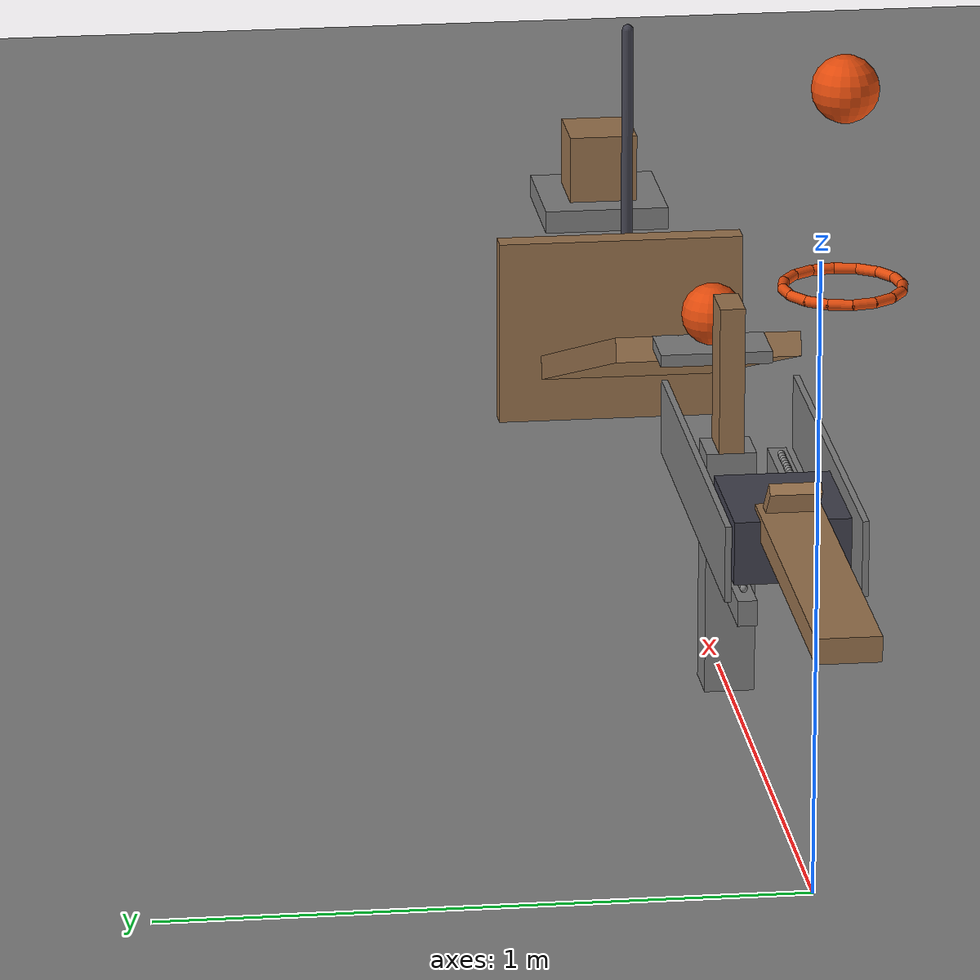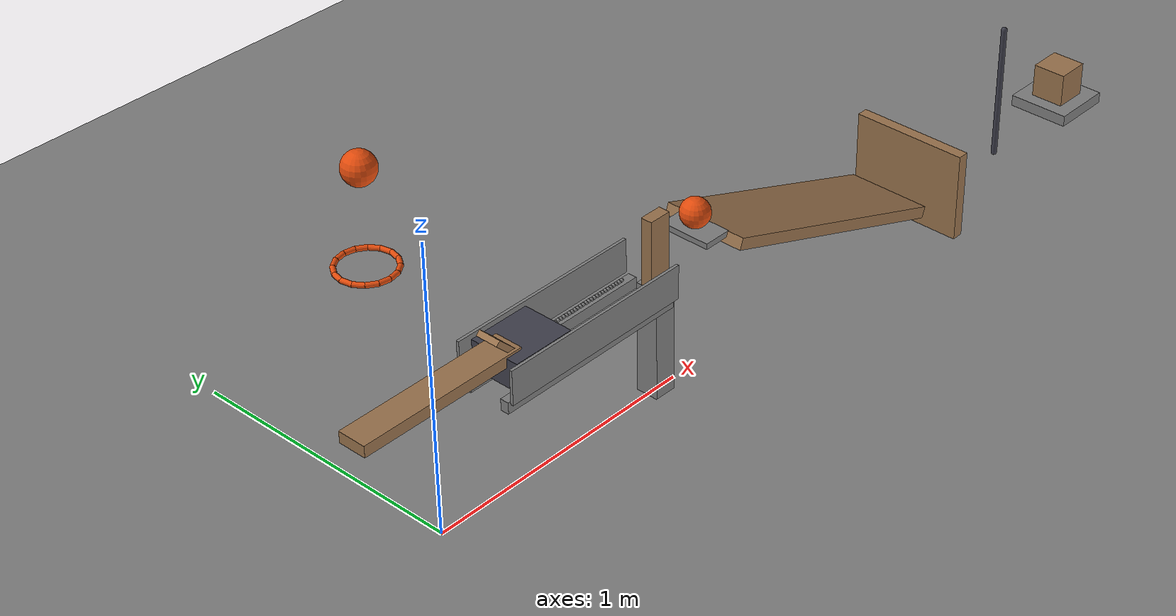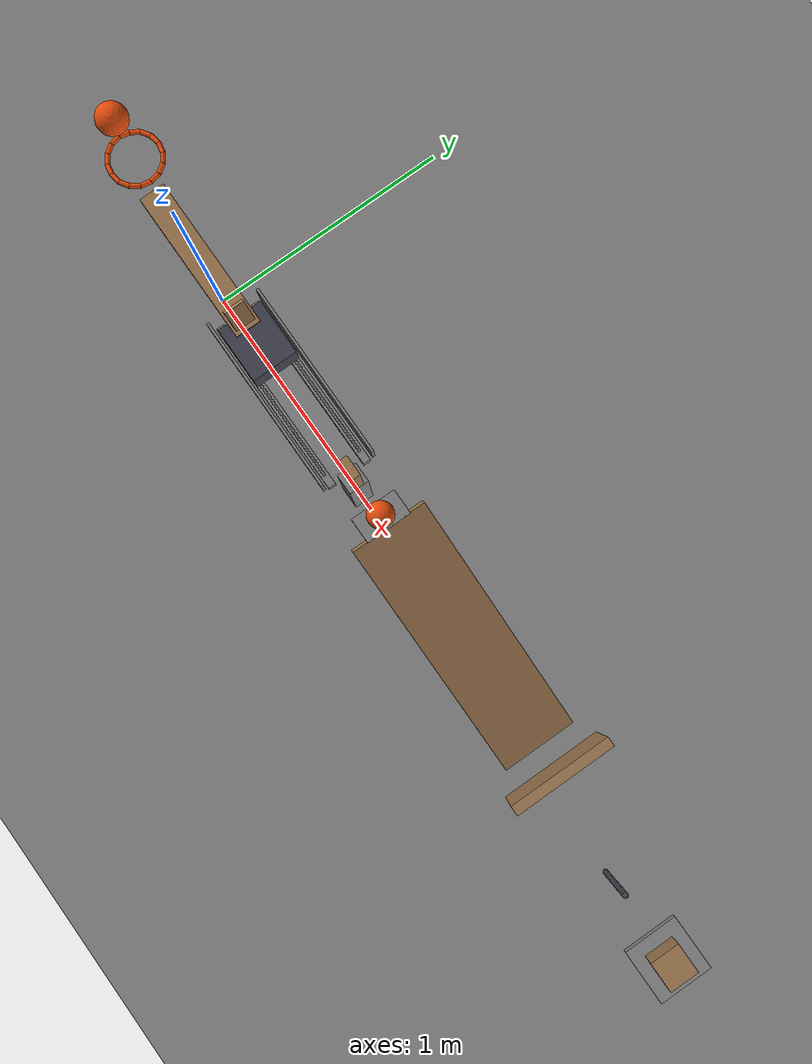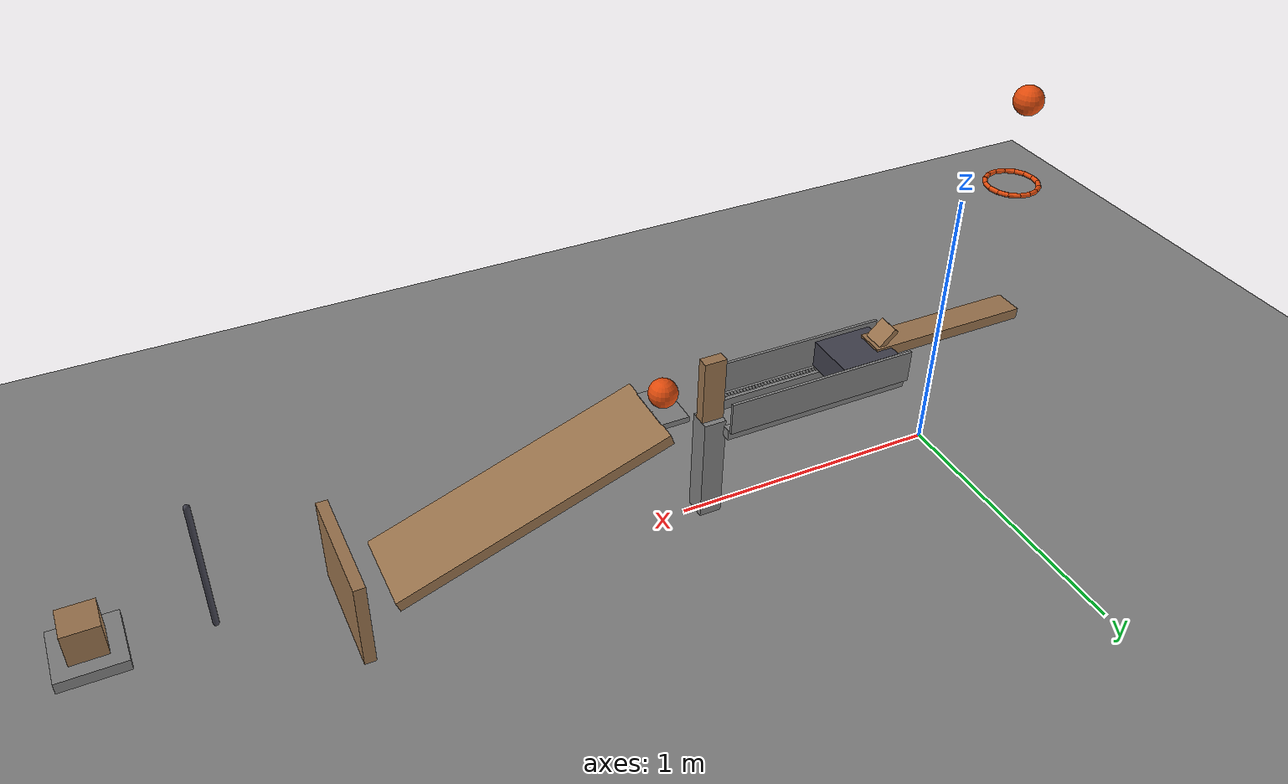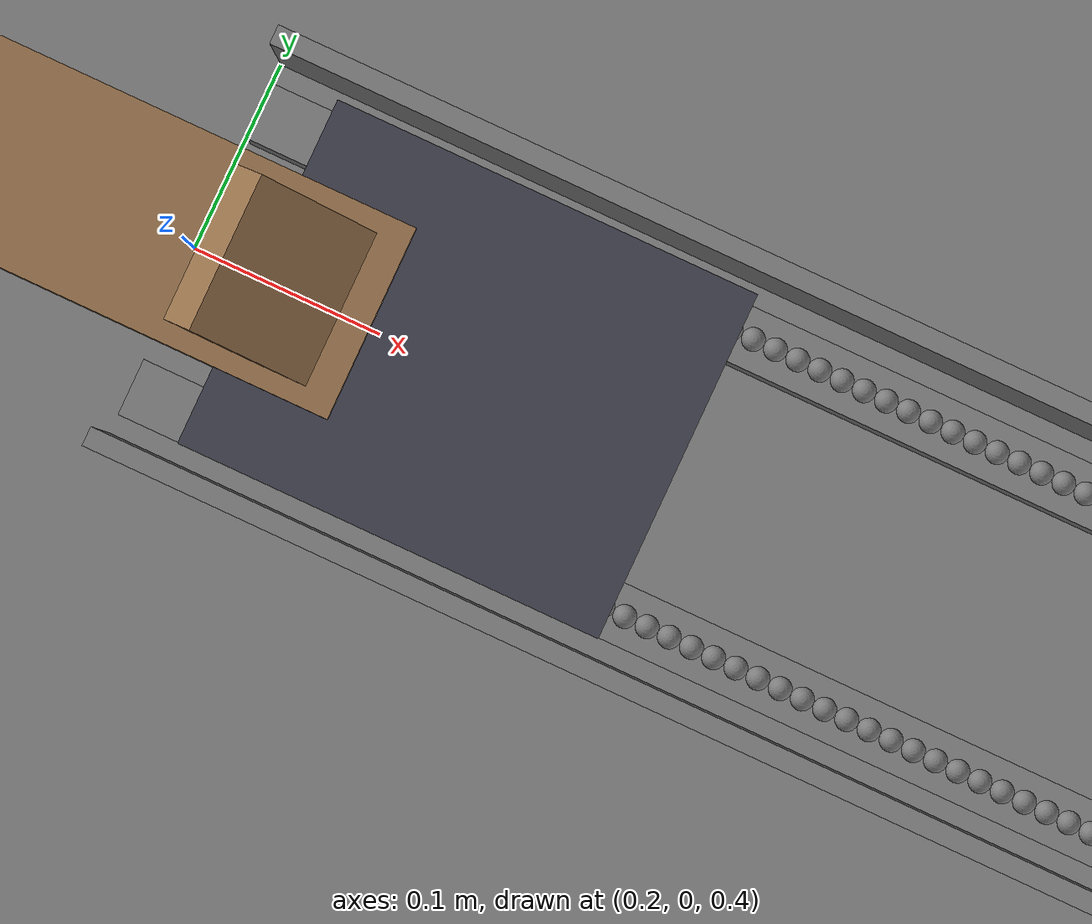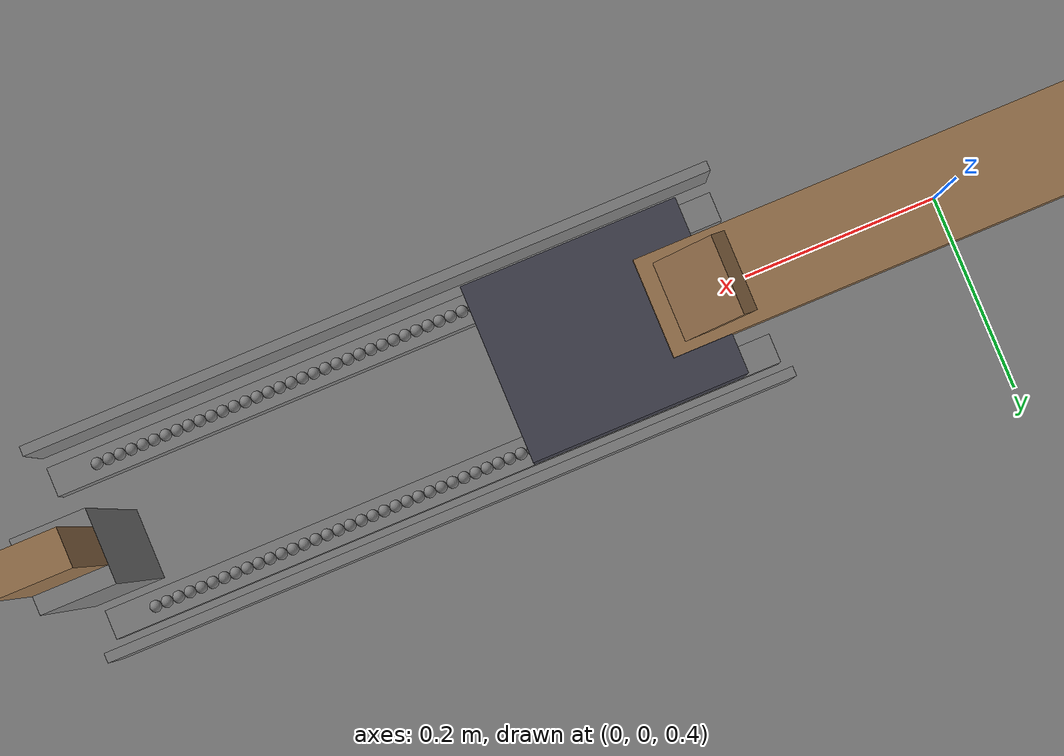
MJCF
<mujoco model="gravity_driven_contact_chain">
  <compiler angle="radian"/>
  <option timestep="0.002"/>
  <worldbody>
    <geom name="floor" type="plane" size="8 8 0.1" friction="0.72 0 0"/>
    <body name="ring1">
      <geom name="ring1_00" type="capsule" size="0.008" fromto="-0.10999 0 1.02627 -0.116689 0.0336761 1.02627" friction="0.72 0 0" solref="0.01 1" rgba="0.9 0.3 0.05 1"/>
      <geom name="ring1_01" type="capsule" size="0.008" fromto="-0.116689 0.0336761 1.02627 -0.135765 0.0622254 1.02627" friction="0.72 0 0" solref="0.01 1" rgba="0.9 0.3 0.05 1"/>
      <geom name="ring1_02" type="capsule" size="0.008" fromto="-0.135765 0.0622254 1.02627 -0.164314 0.0813014 1.02627" friction="0.72 0 0" solref="0.01 1" rgba="0.9 0.3 0.05 1"/>
      <geom name="ring1_03" type="capsule" size="0.008" fromto="-0.164314 0.0813014 1.02627 -0.19799 0.088 1.02627" friction="0.72 0 0" solref="0.01 1" rgba="0.9 0.3 0.05 1"/>
      <geom name="ring1_04" type="capsule" size="0.008" fromto="-0.19799 0.088 1.02627 -0.231666 0.0813014 1.02627" friction="0.72 0 0" solref="0.01 1" rgba="0.9 0.3 0.05 1"/>
      <geom name="ring1_05" type="capsule" size="0.008" fromto="-0.231666 0.0813014 1.02627 -0.260215 0.0622254 1.02627" friction="0.72 0 0" solref="0.01 1" rgba="0.9 0.3 0.05 1"/>
      <geom name="ring1_06" type="capsule" size="0.008" fromto="-0.260215 0.0622254 1.02627 -0.279291 0.0336761 1.02627" friction="0.72 0 0" solref="0.01 1" rgba="0.9 0.3 0.05 1"/>
      <geom name="ring1_07" type="capsule" size="0.008" fromto="-0.279291 0.0336761 1.02627 -0.28599 1.07769e-17 1.02627" friction="0.72 0 0" solref="0.01 1" rgba="0.9 0.3 0.05 1"/>
      <geom name="ring1_08" type="capsule" size="0.008" fromto="-0.28599 1.07769e-17 1.02627 -0.279291 -0.0336761 1.02627" friction="0.72 0 0" solref="0.01 1" rgba="0.9 0.3 0.05 1"/>
      <geom name="ring1_09" type="capsule" size="0.008" fromto="-0.279291 -0.0336761 1.02627 -0.260215 -0.0622254 1.02627" friction="0.72 0 0" solref="0.01 1" rgba="0.9 0.3 0.05 1"/>
      <geom name="ring1_10" type="capsule" size="0.008" fromto="-0.260215 -0.0622254 1.02627 -0.231666 -0.0813014 1.02627" friction="0.72 0 0" solref="0.01 1" rgba="0.9 0.3 0.05 1"/>
      <geom name="ring1_11" type="capsule" size="0.008" fromto="-0.231666 -0.0813014 1.02627 -0.19799 -0.088 1.02627" friction="0.72 0 0" solref="0.01 1" rgba="0.9 0.3 0.05 1"/>
      <geom name="ring1_12" type="capsule" size="0.008" fromto="-0.19799 -0.088 1.02627 -0.164314 -0.0813014 1.02627" friction="0.72 0 0" solref="0.01 1" rgba="0.9 0.3 0.05 1"/>
      <geom name="ring1_13" type="capsule" size="0.008" fromto="-0.164314 -0.0813014 1.02627 -0.135765 -0.0622254 1.02627" friction="0.72 0 0" solref="0.01 1" rgba="0.9 0.3 0.05 1"/>
      <geom name="ring1_14" type="capsule" size="0.008" fromto="-0.135765 -0.0622254 1.02627 -0.116689 -0.0336761 1.02627" friction="0.72 0 0" solref="0.01 1" rgba="0.9 0.3 0.05 1"/>
      <geom name="ring1_15" type="capsule" size="0.008" fromto="-0.116689 -0.0336761 1.02627 -0.10999 -2.15538e-17 1.02627" friction="0.72 0 0" solref="0.01 1" rgba="0.9 0.3 0.05 1"/>
    </body>
    <body name="ball1" pos="-0.19799 0 1.32627">
      <freejoint/>
      <geom name="ball1" type="sphere" pos="0 0 0" size="0.05" mass="0.2" condim="6" friction="0.72 0 0" solref="0.01 1" rgba="0.9 0.3 0.05 1"/>
    </body>
    <body name="lever1" pos="0 0 0.5">
      <joint name="lever_hinge" type="hinge" pos="0 0 0" axis="0 1 0" limited="true" range="0 0.785398" damping="0.04"/>
      <geom name="lever1" type="box" pos="0 0 0" size="0.3 0.05 0.02" mass="0.5" friction="0.72 0 0" solref="0.01 1" rgba="0.6 0.45 0.3 1"/>
      <geom name="lever striking face" type="box" pos="0.28 0 0.01" size="0.0848528 0.04 0.01" euler="0 0.785398 0" mass="0.001" friction="0.72 0 0" solref="0.01 1" rgba="0.6 0.45 0.3 1"/>
    </body>
    <body name="left bearing rail">
      <geom name="left bearing rail" type="box" pos="0.55 0.075 0.38" size="0.35 0.015 0.02" friction="0.72 0 0" solref="0.01 1"/>
    </body>
    <body name="right bearing rail">
      <geom name="right bearing rail" type="box" pos="0.55 -0.075 0.38" size="0.35 0.015 0.02" friction="0.72 0 0" solref="0.01 1"/>
    </body>
    <body name="left bearings1" pos="0.24 0.075 0.406">
      <freejoint/>
      <geom name="left bearings1" type="sphere" pos="0 0 0" size="0.006" mass="0.001" condim="6" friction="0.72 0 0" solref="0.01 1"/>
    </body>
    <body name="left bearings2" pos="0.252 0.075 0.406">
      <freejoint/>
      <geom name="left bearings2" type="sphere" pos="0 0 0" size="0.006" mass="0.001" condim="6" friction="0.72 0 0" solref="0.01 1"/>
    </body>
    <body name="left bearings3" pos="0.264 0.075 0.406">
      <freejoint/>
      <geom name="left bearings3" type="sphere" pos="0 0 0" size="0.006" mass="0.001" condim="6" friction="0.72 0 0" solref="0.01 1"/>
    </body>
    <body name="left bearings4" pos="0.276 0.075 0.406">
      <freejoint/>
      <geom name="left bearings4" type="sphere" pos="0 0 0" size="0.006" mass="0.001" condim="6" friction="0.72 0 0" solref="0.01 1"/>
    </body>
    <body name="left bearings5" pos="0.288 0.075 0.406">
      <freejoint/>
      <geom name="left bearings5" type="sphere" pos="0 0 0" size="0.006" mass="0.001" condim="6" friction="0.72 0 0" solref="0.01 1"/>
    </body>
    <body name="left bearings6" pos="0.3 0.075 0.406">
      <freejoint/>
      <geom name="left bearings6" type="sphere" pos="0 0 0" size="0.006" mass="0.001" condim="6" friction="0.72 0 0" solref="0.01 1"/>
    </body>
    <body name="left bearings7" pos="0.312 0.075 0.406">
      <freejoint/>
      <geom name="left bearings7" type="sphere" pos="0 0 0" size="0.006" mass="0.001" condim="6" friction="0.72 0 0" solref="0.01 1"/>
    </body>
    <body name="left bearings8" pos="0.324 0.075 0.406">
      <freejoint/>
      <geom name="left bearings8" type="sphere" pos="0 0 0" size="0.006" mass="0.001" condim="6" friction="0.72 0 0" solref="0.01 1"/>
    </body>
    <body name="left bearings9" pos="0.336 0.075 0.406">
      <freejoint/>
      <geom name="left bearings9" type="sphere" pos="0 0 0" size="0.006" mass="0.001" condim="6" friction="0.72 0 0" solref="0.01 1"/>
    </body>
    <body name="left bearings10" pos="0.348 0.075 0.406">
      <freejoint/>
      <geom name="left bearings10" type="sphere" pos="0 0 0" size="0.006" mass="0.001" condim="6" friction="0.72 0 0" solref="0.01 1"/>
    </body>
    <body name="left bearings11" pos="0.36 0.075 0.406">
      <freejoint/>
      <geom name="left bearings11" type="sphere" pos="0 0 0" size="0.006" mass="0.001" condim="6" friction="0.72 0 0" solref="0.01 1"/>
    </body>
    <body name="left bearings12" pos="0.372 0.075 0.406">
      <freejoint/>
      <geom name="left bearings12" type="sphere" pos="0 0 0" size="0.006" mass="0.001" condim="6" friction="0.72 0 0" solref="0.01 1"/>
    </body>
    <body name="left bearings13" pos="0.384 0.075 0.406">
      <freejoint/>
      <geom name="left bearings13" type="sphere" pos="0 0 0" size="0.006" mass="0.001" condim="6" friction="0.72 0 0" solref="0.01 1"/>
    </body>
    <body name="left bearings14" pos="0.396 0.075 0.406">
      <freejoint/>
      <geom name="left bearings14" type="sphere" pos="0 0 0" size="0.006" mass="0.001" condim="6" friction="0.72 0 0" solref="0.01 1"/>
    </body>
    <body name="left bearings15" pos="0.408 0.075 0.406">
      <freejoint/>
      <geom name="left bearings15" type="sphere" pos="0 0 0" size="0.006" mass="0.001" condim="6" friction="0.72 0 0" solref="0.01 1"/>
    </body>
    <body name="left bearings16" pos="0.42 0.075 0.406">
      <freejoint/>
      <geom name="left bearings16" type="sphere" pos="0 0 0" size="0.006" mass="0.001" condim="6" friction="0.72 0 0" solref="0.01 1"/>
    </body>
    <body name="left bearings17" pos="0.432 0.075 0.406">
      <freejoint/>
      <geom name="left bearings17" type="sphere" pos="0 0 0" size="0.006" mass="0.001" condim="6" friction="0.72 0 0" solref="0.01 1"/>
    </body>
    <body name="left bearings18" pos="0.444 0.075 0.406">
      <freejoint/>
      <geom name="left bearings18" type="sphere" pos="0 0 0" size="0.006" mass="0.001" condim="6" friction="0.72 0 0" solref="0.01 1"/>
    </body>
    <body name="left bearings19" pos="0.456 0.075 0.406">
      <freejoint/>
      <geom name="left bearings19" type="sphere" pos="0 0 0" size="0.006" mass="0.001" condim="6" friction="0.72 0 0" solref="0.01 1"/>
    </body>
    <body name="left bearings20" pos="0.468 0.075 0.406">
      <freejoint/>
      <geom name="left bearings20" type="sphere" pos="0 0 0" size="0.006" mass="0.001" condim="6" friction="0.72 0 0" solref="0.01 1"/>
    </body>
    <body name="left bearings21" pos="0.48 0.075 0.406">
      <freejoint/>
      <geom name="left bearings21" type="sphere" pos="0 0 0" size="0.006" mass="0.001" condim="6" friction="0.72 0 0" solref="0.01 1"/>
    </body>
    <body name="left bearings22" pos="0.492 0.075 0.406">
      <freejoint/>
      <geom name="left bearings22" type="sphere" pos="0 0 0" size="0.006" mass="0.001" condim="6" friction="0.72 0 0" solref="0.01 1"/>
    </body>
    <body name="left bearings23" pos="0.504 0.075 0.406">
      <freejoint/>
      <geom name="left bearings23" type="sphere" pos="0 0 0" size="0.006" mass="0.001" condim="6" friction="0.72 0 0" solref="0.01 1"/>
    </body>
    <body name="left bearings24" pos="0.516 0.075 0.406">
      <freejoint/>
      <geom name="left bearings24" type="sphere" pos="0 0 0" size="0.006" mass="0.001" condim="6" friction="0.72 0 0" solref="0.01 1"/>
    </body>
    <body name="left bearings25" pos="0.528 0.075 0.406">
      <freejoint/>
      <geom name="left bearings25" type="sphere" pos="0 0 0" size="0.006" mass="0.001" condim="6" friction="0.72 0 0" solref="0.01 1"/>
    </body>
    <body name="left bearings26" pos="0.54 0.075 0.406">
      <freejoint/>
      <geom name="left bearings26" type="sphere" pos="0 0 0" size="0.006" mass="0.001" condim="6" friction="0.72 0 0" solref="0.01 1"/>
    </body>
    <body name="left bearings27" pos="0.552 0.075 0.406">
      <freejoint/>
      <geom name="left bearings27" type="sphere" pos="0 0 0" size="0.006" mass="0.001" condim="6" friction="0.72 0 0" solref="0.01 1"/>
    </body>
    <body name="left bearings28" pos="0.564 0.075 0.406">
      <freejoint/>
      <geom name="left bearings28" type="sphere" pos="0 0 0" size="0.006" mass="0.001" condim="6" friction="0.72 0 0" solref="0.01 1"/>
    </body>
    <body name="left bearings29" pos="0.576 0.075 0.406">
      <freejoint/>
      <geom name="left bearings29" type="sphere" pos="0 0 0" size="0.006" mass="0.001" condim="6" friction="0.72 0 0" solref="0.01 1"/>
    </body>
    <body name="left bearings30" pos="0.588 0.075 0.406">
      <freejoint/>
      <geom name="left bearings30" type="sphere" pos="0 0 0" size="0.006" mass="0.001" condim="6" friction="0.72 0 0" solref="0.01 1"/>
    </body>
    <body name="left bearings31" pos="0.6 0.075 0.406">
      <freejoint/>
      <geom name="left bearings31" type="sphere" pos="0 0 0" size="0.006" mass="0.001" condim="6" friction="0.72 0 0" solref="0.01 1"/>
    </body>
    <body name="left bearings32" pos="0.612 0.075 0.406">
      <freejoint/>
      <geom name="left bearings32" type="sphere" pos="0 0 0" size="0.006" mass="0.001" condim="6" friction="0.72 0 0" solref="0.01 1"/>
    </body>
    <body name="left bearings33" pos="0.624 0.075 0.406">
      <freejoint/>
      <geom name="left bearings33" type="sphere" pos="0 0 0" size="0.006" mass="0.001" condim="6" friction="0.72 0 0" solref="0.01 1"/>
    </body>
    <body name="left bearings34" pos="0.636 0.075 0.406">
      <freejoint/>
      <geom name="left bearings34" type="sphere" pos="0 0 0" size="0.006" mass="0.001" condim="6" friction="0.72 0 0" solref="0.01 1"/>
    </body>
    <body name="left bearings35" pos="0.648 0.075 0.406">
      <freejoint/>
      <geom name="left bearings35" type="sphere" pos="0 0 0" size="0.006" mass="0.001" condim="6" friction="0.72 0 0" solref="0.01 1"/>
    </body>
    <body name="left bearings36" pos="0.66 0.075 0.406">
      <freejoint/>
      <geom name="left bearings36" type="sphere" pos="0 0 0" size="0.006" mass="0.001" condim="6" friction="0.72 0 0" solref="0.01 1"/>
    </body>
    <body name="left bearings37" pos="0.672 0.075 0.406">
      <freejoint/>
      <geom name="left bearings37" type="sphere" pos="0 0 0" size="0.006" mass="0.001" condim="6" friction="0.72 0 0" solref="0.01 1"/>
    </body>
    <body name="left bearings38" pos="0.684 0.075 0.406">
      <freejoint/>
      <geom name="left bearings38" type="sphere" pos="0 0 0" size="0.006" mass="0.001" condim="6" friction="0.72 0 0" solref="0.01 1"/>
    </body>
    <body name="left bearings39" pos="0.696 0.075 0.406">
      <freejoint/>
      <geom name="left bearings39" type="sphere" pos="0 0 0" size="0.006" mass="0.001" condim="6" friction="0.72 0 0" solref="0.01 1"/>
    </body>
    <body name="left bearings40" pos="0.708 0.075 0.406">
      <freejoint/>
      <geom name="left bearings40" type="sphere" pos="0 0 0" size="0.006" mass="0.001" condim="6" friction="0.72 0 0" solref="0.01 1"/>
    </body>
    <body name="left bearings41" pos="0.72 0.075 0.406">
      <freejoint/>
      <geom name="left bearings41" type="sphere" pos="0 0 0" size="0.006" mass="0.001" condim="6" friction="0.72 0 0" solref="0.01 1"/>
    </body>
    <body name="left bearings42" pos="0.732 0.075 0.406">
      <freejoint/>
      <geom name="left bearings42" type="sphere" pos="0 0 0" size="0.006" mass="0.001" condim="6" friction="0.72 0 0" solref="0.01 1"/>
    </body>
    <body name="left bearings43" pos="0.744 0.075 0.406">
      <freejoint/>
      <geom name="left bearings43" type="sphere" pos="0 0 0" size="0.006" mass="0.001" condim="6" friction="0.72 0 0" solref="0.01 1"/>
    </body>
    <body name="left bearings44" pos="0.756 0.075 0.406">
      <freejoint/>
      <geom name="left bearings44" type="sphere" pos="0 0 0" size="0.006" mass="0.001" condim="6" friction="0.72 0 0" solref="0.01 1"/>
    </body>
    <body name="left bearings45" pos="0.768 0.075 0.406">
      <freejoint/>
      <geom name="left bearings45" type="sphere" pos="0 0 0" size="0.006" mass="0.001" condim="6" friction="0.72 0 0" solref="0.01 1"/>
    </body>
    <body name="left bearings46" pos="0.78 0.075 0.406">
      <freejoint/>
      <geom name="left bearings46" type="sphere" pos="0 0 0" size="0.006" mass="0.001" condim="6" friction="0.72 0 0" solref="0.01 1"/>
    </body>
    <body name="left bearings47" pos="0.792 0.075 0.406">
      <freejoint/>
      <geom name="left bearings47" type="sphere" pos="0 0 0" size="0.006" mass="0.001" condim="6" friction="0.72 0 0" solref="0.01 1"/>
    </body>
    <body name="left bearings48" pos="0.804 0.075 0.406">
      <freejoint/>
      <geom name="left bearings48" type="sphere" pos="0 0 0" size="0.006" mass="0.001" condim="6" friction="0.72 0 0" solref="0.01 1"/>
    </body>
    <body name="left bearings49" pos="0.816 0.075 0.406">
      <freejoint/>
      <geom name="left bearings49" type="sphere" pos="0 0 0" size="0.006" mass="0.001" condim="6" friction="0.72 0 0" solref="0.01 1"/>
    </body>
    <body name="left bearings50" pos="0.828 0.075 0.406">
      <freejoint/>
      <geom name="left bearings50" type="sphere" pos="0 0 0" size="0.006" mass="0.001" condim="6" friction="0.72 0 0" solref="0.01 1"/>
    </body>
    <body name="left bearings51" pos="0.84 0.075 0.406">
      <freejoint/>
      <geom name="left bearings51" type="sphere" pos="0 0 0" size="0.006" mass="0.001" condim="6" friction="0.72 0 0" solref="0.01 1"/>
    </body>
    <body name="left bearings52" pos="0.852 0.075 0.406">
      <freejoint/>
      <geom name="left bearings52" type="sphere" pos="0 0 0" size="0.006" mass="0.001" condim="6" friction="0.72 0 0" solref="0.01 1"/>
    </body>
    <body name="right bearings1" pos="0.24 -0.075 0.406">
      <freejoint/>
      <geom name="right bearings1" type="sphere" pos="0 0 0" size="0.006" mass="0.001" condim="6" friction="0.72 0 0" solref="0.01 1"/>
    </body>
    <body name="right bearings2" pos="0.252 -0.075 0.406">
      <freejoint/>
      <geom name="right bearings2" type="sphere" pos="0 0 0" size="0.006" mass="0.001" condim="6" friction="0.72 0 0" solref="0.01 1"/>
    </body>
    <body name="right bearings3" pos="0.264 -0.075 0.406">
      <freejoint/>
      <geom name="right bearings3" type="sphere" pos="0 0 0" size="0.006" mass="0.001" condim="6" friction="0.72 0 0" solref="0.01 1"/>
    </body>
    <body name="right bearings4" pos="0.276 -0.075 0.406">
      <freejoint/>
      <geom name="right bearings4" type="sphere" pos="0 0 0" size="0.006" mass="0.001" condim="6" friction="0.72 0 0" solref="0.01 1"/>
    </body>
    <body name="right bearings5" pos="0.288 -0.075 0.406">
      <freejoint/>
      <geom name="right bearings5" type="sphere" pos="0 0 0" size="0.006" mass="0.001" condim="6" friction="0.72 0 0" solref="0.01 1"/>
    </body>
    <body name="right bearings6" pos="0.3 -0.075 0.406">
      <freejoint/>
      <geom name="right bearings6" type="sphere" pos="0 0 0" size="0.006" mass="0.001" condim="6" friction="0.72 0 0" solref="0.01 1"/>
    </body>
    <body name="right bearings7" pos="0.312 -0.075 0.406">
      <freejoint/>
      <geom name="right bearings7" type="sphere" pos="0 0 0" size="0.006" mass="0.001" condim="6" friction="0.72 0 0" solref="0.01 1"/>
    </body>
    <body name="right bearings8" pos="0.324 -0.075 0.406">
      <freejoint/>
      <geom name="right bearings8" type="sphere" pos="0 0 0" size="0.006" mass="0.001" condim="6" friction="0.72 0 0" solref="0.01 1"/>
    </body>
    <body name="right bearings9" pos="0.336 -0.075 0.406">
      <freejoint/>
      <geom name="right bearings9" type="sphere" pos="0 0 0" size="0.006" mass="0.001" condim="6" friction="0.72 0 0" solref="0.01 1"/>
    </body>
    <body name="right bearings10" pos="0.348 -0.075 0.406">
      <freejoint/>
      <geom name="right bearings10" type="sphere" pos="0 0 0" size="0.006" mass="0.001" condim="6" friction="0.72 0 0" solref="0.01 1"/>
    </body>
    <body name="right bearings11" pos="0.36 -0.075 0.406">
      <freejoint/>
      <geom name="right bearings11" type="sphere" pos="0 0 0" size="0.006" mass="0.001" condim="6" friction="0.72 0 0" solref="0.01 1"/>
    </body>
    <body name="right bearings12" pos="0.372 -0.075 0.406">
      <freejoint/>
      <geom name="right bearings12" type="sphere" pos="0 0 0" size="0.006" mass="0.001" condim="6" friction="0.72 0 0" solref="0.01 1"/>
    </body>
    <body name="right bearings13" pos="0.384 -0.075 0.406">
      <freejoint/>
      <geom name="right bearings13" type="sphere" pos="0 0 0" size="0.006" mass="0.001" condim="6" friction="0.72 0 0" solref="0.01 1"/>
    </body>
    <body name="right bearings14" pos="0.396 -0.075 0.406">
      <freejoint/>
      <geom name="right bearings14" type="sphere" pos="0 0 0" size="0.006" mass="0.001" condim="6" friction="0.72 0 0" solref="0.01 1"/>
    </body>
    <body name="right bearings15" pos="0.408 -0.075 0.406">
      <freejoint/>
      <geom name="right bearings15" type="sphere" pos="0 0 0" size="0.006" mass="0.001" condim="6" friction="0.72 0 0" solref="0.01 1"/>
    </body>
    <body name="right bearings16" pos="0.42 -0.075 0.406">
      <freejoint/>
      <geom name="right bearings16" type="sphere" pos="0 0 0" size="0.006" mass="0.001" condim="6" friction="0.72 0 0" solref="0.01 1"/>
    </body>
    <body name="right bearings17" pos="0.432 -0.075 0.406">
      <freejoint/>
      <geom name="right bearings17" type="sphere" pos="0 0 0" size="0.006" mass="0.001" condim="6" friction="0.72 0 0" solref="0.01 1"/>
    </body>
    <body name="right bearings18" pos="0.444 -0.075 0.406">
      <freejoint/>
      <geom name="right bearings18" type="sphere" pos="0 0 0" size="0.006" mass="0.001" condim="6" friction="0.72 0 0" solref="0.01 1"/>
    </body>
    <body name="right bearings19" pos="0.456 -0.075 0.406">
      <freejoint/>
      <geom name="right bearings19" type="sphere" pos="0 0 0" size="0.006" mass="0.001" condim="6" friction="0.72 0 0" solref="0.01 1"/>
    </body>
    <body name="right bearings20" pos="0.468 -0.075 0.406">
      <freejoint/>
      <geom name="right bearings20" type="sphere" pos="0 0 0" size="0.006" mass="0.001" condim="6" friction="0.72 0 0" solref="0.01 1"/>
    </body>
    <body name="right bearings21" pos="0.48 -0.075 0.406">
      <freejoint/>
      <geom name="right bearings21" type="sphere" pos="0 0 0" size="0.006" mass="0.001" condim="6" friction="0.72 0 0" solref="0.01 1"/>
    </body>
    <body name="right bearings22" pos="0.492 -0.075 0.406">
      <freejoint/>
      <geom name="right bearings22" type="sphere" pos="0 0 0" size="0.006" mass="0.001" condim="6" friction="0.72 0 0" solref="0.01 1"/>
    </body>
    <body name="right bearings23" pos="0.504 -0.075 0.406">
      <freejoint/>
      <geom name="right bearings23" type="sphere" pos="0 0 0" size="0.006" mass="0.001" condim="6" friction="0.72 0 0" solref="0.01 1"/>
    </body>
    <body name="right bearings24" pos="0.516 -0.075 0.406">
      <freejoint/>
      <geom name="right bearings24" type="sphere" pos="0 0 0" size="0.006" mass="0.001" condim="6" friction="0.72 0 0" solref="0.01 1"/>
    </body>
    <body name="right bearings25" pos="0.528 -0.075 0.406">
      <freejoint/>
      <geom name="right bearings25" type="sphere" pos="0 0 0" size="0.006" mass="0.001" condim="6" friction="0.72 0 0" solref="0.01 1"/>
    </body>
    <body name="right bearings26" pos="0.54 -0.075 0.406">
      <freejoint/>
      <geom name="right bearings26" type="sphere" pos="0 0 0" size="0.006" mass="0.001" condim="6" friction="0.72 0 0" solref="0.01 1"/>
    </body>
    <body name="right bearings27" pos="0.552 -0.075 0.406">
      <freejoint/>
      <geom name="right bearings27" type="sphere" pos="0 0 0" size="0.006" mass="0.001" condim="6" friction="0.72 0 0" solref="0.01 1"/>
    </body>
    <body name="right bearings28" pos="0.564 -0.075 0.406">
      <freejoint/>
      <geom name="right bearings28" type="sphere" pos="0 0 0" size="0.006" mass="0.001" condim="6" friction="0.72 0 0" solref="0.01 1"/>
    </body>
    <body name="right bearings29" pos="0.576 -0.075 0.406">
      <freejoint/>
      <geom name="right bearings29" type="sphere" pos="0 0 0" size="0.006" mass="0.001" condim="6" friction="0.72 0 0" solref="0.01 1"/>
    </body>
    <body name="right bearings30" pos="0.588 -0.075 0.406">
      <freejoint/>
      <geom name="right bearings30" type="sphere" pos="0 0 0" size="0.006" mass="0.001" condim="6" friction="0.72 0 0" solref="0.01 1"/>
    </body>
    <body name="right bearings31" pos="0.6 -0.075 0.406">
      <freejoint/>
      <geom name="right bearings31" type="sphere" pos="0 0 0" size="0.006" mass="0.001" condim="6" friction="0.72 0 0" solref="0.01 1"/>
    </body>
    <body name="right bearings32" pos="0.612 -0.075 0.406">
      <freejoint/>
      <geom name="right bearings32" type="sphere" pos="0 0 0" size="0.006" mass="0.001" condim="6" friction="0.72 0 0" solref="0.01 1"/>
    </body>
    <body name="right bearings33" pos="0.624 -0.075 0.406">
      <freejoint/>
      <geom name="right bearings33" type="sphere" pos="0 0 0" size="0.006" mass="0.001" condim="6" friction="0.72 0 0" solref="0.01 1"/>
    </body>
    <body name="right bearings34" pos="0.636 -0.075 0.406">
      <freejoint/>
      <geom name="right bearings34" type="sphere" pos="0 0 0" size="0.006" mass="0.001" condim="6" friction="0.72 0 0" solref="0.01 1"/>
    </body>
    <body name="right bearings35" pos="0.648 -0.075 0.406">
      <freejoint/>
      <geom name="right bearings35" type="sphere" pos="0 0 0" size="0.006" mass="0.001" condim="6" friction="0.72 0 0" solref="0.01 1"/>
    </body>
    <body name="right bearings36" pos="0.66 -0.075 0.406">
      <freejoint/>
      <geom name="right bearings36" type="sphere" pos="0 0 0" size="0.006" mass="0.001" condim="6" friction="0.72 0 0" solref="0.01 1"/>
    </body>
    <body name="right bearings37" pos="0.672 -0.075 0.406">
      <freejoint/>
      <geom name="right bearings37" type="sphere" pos="0 0 0" size="0.006" mass="0.001" condim="6" friction="0.72 0 0" solref="0.01 1"/>
    </body>
    <body name="right bearings38" pos="0.684 -0.075 0.406">
      <freejoint/>
      <geom name="right bearings38" type="sphere" pos="0 0 0" size="0.006" mass="0.001" condim="6" friction="0.72 0 0" solref="0.01 1"/>
    </body>
    <body name="right bearings39" pos="0.696 -0.075 0.406">
      <freejoint/>
      <geom name="right bearings39" type="sphere" pos="0 0 0" size="0.006" mass="0.001" condim="6" friction="0.72 0 0" solref="0.01 1"/>
    </body>
    <body name="right bearings40" pos="0.708 -0.075 0.406">
      <freejoint/>
      <geom name="right bearings40" type="sphere" pos="0 0 0" size="0.006" mass="0.001" condim="6" friction="0.72 0 0" solref="0.01 1"/>
    </body>
    <body name="right bearings41" pos="0.72 -0.075 0.406">
      <freejoint/>
      <geom name="right bearings41" type="sphere" pos="0 0 0" size="0.006" mass="0.001" condim="6" friction="0.72 0 0" solref="0.01 1"/>
    </body>
    <body name="right bearings42" pos="0.732 -0.075 0.406">
      <freejoint/>
      <geom name="right bearings42" type="sphere" pos="0 0 0" size="0.006" mass="0.001" condim="6" friction="0.72 0 0" solref="0.01 1"/>
    </body>
    <body name="right bearings43" pos="0.744 -0.075 0.406">
      <freejoint/>
      <geom name="right bearings43" type="sphere" pos="0 0 0" size="0.006" mass="0.001" condim="6" friction="0.72 0 0" solref="0.01 1"/>
    </body>
    <body name="right bearings44" pos="0.756 -0.075 0.406">
      <freejoint/>
      <geom name="right bearings44" type="sphere" pos="0 0 0" size="0.006" mass="0.001" condim="6" friction="0.72 0 0" solref="0.01 1"/>
    </body>
    <body name="right bearings45" pos="0.768 -0.075 0.406">
      <freejoint/>
      <geom name="right bearings45" type="sphere" pos="0 0 0" size="0.006" mass="0.001" condim="6" friction="0.72 0 0" solref="0.01 1"/>
    </body>
    <body name="right bearings46" pos="0.78 -0.075 0.406">
      <freejoint/>
      <geom name="right bearings46" type="sphere" pos="0 0 0" size="0.006" mass="0.001" condim="6" friction="0.72 0 0" solref="0.01 1"/>
    </body>
    <body name="right bearings47" pos="0.792 -0.075 0.406">
      <freejoint/>
      <geom name="right bearings47" type="sphere" pos="0 0 0" size="0.006" mass="0.001" condim="6" friction="0.72 0 0" solref="0.01 1"/>
    </body>
    <body name="right bearings48" pos="0.804 -0.075 0.406">
      <freejoint/>
      <geom name="right bearings48" type="sphere" pos="0 0 0" size="0.006" mass="0.001" condim="6" friction="0.72 0 0" solref="0.01 1"/>
    </body>
    <body name="right bearings49" pos="0.816 -0.075 0.406">
      <freejoint/>
      <geom name="right bearings49" type="sphere" pos="0 0 0" size="0.006" mass="0.001" condim="6" friction="0.72 0 0" solref="0.01 1"/>
    </body>
    <body name="right bearings50" pos="0.828 -0.075 0.406">
      <freejoint/>
      <geom name="right bearings50" type="sphere" pos="0 0 0" size="0.006" mass="0.001" condim="6" friction="0.72 0 0" solref="0.01 1"/>
    </body>
    <body name="right bearings51" pos="0.84 -0.075 0.406">
      <freejoint/>
      <geom name="right bearings51" type="sphere" pos="0 0 0" size="0.006" mass="0.001" condim="6" friction="0.72 0 0" solref="0.01 1"/>
    </body>
    <body name="right bearings52" pos="0.852 -0.075 0.406">
      <freejoint/>
      <geom name="right bearings52" type="sphere" pos="0 0 0" size="0.006" mass="0.001" condim="6" friction="0.72 0 0" solref="0.01 1"/>
    </body>
    <body name="left cart guide">
      <geom name="left cart guide" type="box" pos="0.55 0.105 0.46" size="0.35 0.005 0.06" friction="0.72 0 0" solref="0.01 1"/>
    </body>
    <body name="right cart guide">
      <geom name="right cart guide" type="box" pos="0.55 -0.105 0.46" size="0.35 0.005 0.06" friction="0.72 0 0" solref="0.01 1"/>
    </body>
    <body name="cart1" pos="0.35 0 0.462">
      <freejoint/>
      <geom name="cart1" type="box" pos="0 0 0" size="0.11 0.09 0.05" mass="0.5" friction="0.72 0 0" solref="0.01 1" rgba="0.25 0.25 0.3 1"/>
    </body>
    <body name="domino pedestal">
      <geom name="domino pedestal" type="box" pos="0.92 0 0.2" size="0.04 0.04 0.2" friction="0.72 0 0" solref="0.01 1"/>
    </body>
    <body name="domino1" pos="0.92 0 0.52">
      <freejoint/>
      <geom name="domino1" type="box" pos="0 0 0" size="0.04 0.02 0.12" mass="0.25" friction="0.72 0 0" solref="0.01 1" rgba="0.6 0.45 0.3 1"/>
    </body>
    <body name="ball perch">
      <geom name="ball perch" type="box" pos="1.1 0 0.5008" size="0.05 0.09 0.01" friction="0.72 0 0" solref="0.01 1"/>
    </body>
    <body name="ball2" pos="1.1 0 0.5608">
      <freejoint/>
      <geom name="ball2" type="sphere" pos="0 0 0" size="0.05" mass="0.2" condim="6" friction="0.72 0 0" solref="0.01 1" rgba="0.9 0.3 0.05 1"/>
    </body>
    <body name="ramp1">
      <geom name="ramp1" type="box" pos="1.60985 0 0.32101" size="0.5 0.15 0.02" euler="0 0.349066 0" friction="0.72 0 0" solref="0.01 1" rgba="0.6 0.45 0.3 1"/>
    </body>
    <body name="door1" pos="2.19969 -0.21 0.18">
      <joint name="door_hinge" type="hinge" pos="0 0 0" axis="0 0 1" limited="true" range="-1.22173 0" damping="0.04"/>
      <geom name="door1" type="box" pos="0 0.21 0" size="0.02 0.21 0.16" mass="0.45" friction="0.72 0 0" solref="0.01 1" rgba="0.6 0.45 0.3 1"/>
    </body>
    <body name="pendulum1" pos="2.59969 -0.06635 0.6">
      <joint name="pendulum_hinge" type="hinge" pos="0 0 0" axis="0 1 0" limited="true" range="-0.663225 0" damping="0.04"/>
      <geom name="pendulum1" type="capsule" size="0.01" fromto="0 0 -0.01 0 0 -0.49" mass="0.35" friction="0.72 0 0" solref="0.01 1" rgba="0.25 0.25 0.3 1"/>
    </body>
    <body name="block pedestal">
      <geom name="block pedestal" type="box" pos="2.96769 -0.06635 0.16" size="0.11 0.11 0.02" friction="0.72 0 0" solref="0.01 1"/>
    </body>
    <body name="block1" pos="2.96769 -0.06635 0.24">
      <freejoint/>
      <geom name="block1" type="box" pos="0 0 0" size="0.06 0.06 0.06" mass="0.35" friction="0.72 0 0" solref="0.01 1" rgba="0.6 0.45 0.3 1"/>
    </body>
  </worldbody>
  <keyframe>
    <key name="start" qpos="-0.19799 0 1.32627 1 0 0 0 0.785398 0.24 0.075 0.406 1 0 0 0 0.252 0.075 0.406 1 0 0 0 0.264 0.075 0.406 1 0 0 0 0.276 0.075 0.406 1 0 0 0 0.288 0.075 0.406 1 0 0 0 0.3 0.075 0.406 1 0 0 0 0.312 0.075 0.406 1 0 0 0 0.324 0.075 0.406 1 0 0 0 0.336 0.075 0.406 1 0 0 0 0.348 0.075 0.406 1 0 0 0 0.36 0.075 0.406 1 0 0 0 0.372 0.075 0.406 1 0 0 0 0.384 0.075 0.406 1 0 0 0 0.396 0.075 0.406 1 0 0 0 0.408 0.075 0.406 1 0 0 0 0.42 0.075 0.406 1 0 0 0 0.432 0.075 0.406 1 0 0 0 0.444 0.075 0.406 1 0 0 0 0.456 0.075 0.406 1 0 0 0 0.468 0.075 0.406 1 0 0 0 0.48 0.075 0.406 1 0 0 0 0.492 0.075 0.406 1 0 0 0 0.504 0.075 0.406 1 0 0 0 0.516 0.075 0.406 1 0 0 0 0.528 0.075 0.406 1 0 0 0 0.54 0.075 0.406 1 0 0 0 0.552 0.075 0.406 1 0 0 0 0.564 0.075 0.406 1 0 0 0 0.576 0.075 0.406 1 0 0 0 0.588 0.075 0.406 1 0 0 0 0.6 0.075 0.406 1 0 0 0 0.612 0.075 0.406 1 0 0 0 0.624 0.075 0.406 1 0 0 0 0.636 0.075 0.406 1 0 0 0 0.648 0.075 0.406 1 0 0 0 0.66 0.075 0.406 1 0 0 0 0.672 0.075 0.406 1 0 0 0 0.684 0.075 0.406 1 0 0 0 0.696 0.075 0.406 1 0 0 0 0.708 0.075 0.406 1 0 0 0 0.72 0.075 0.406 1 0 0 0 0.732 0.075 0.406 1 0 0 0 0.744 0.075 0.406 1 0 0 0 0.756 0.075 0.406 1 0 0 0 0.768 0.075 0.406 1 0 0 0 0.78 0.075 0.406 1 0 0 0 0.792 0.075 0.406 1 0 0 0 0.804 0.075 0.406 1 0 0 0 0.816 0.075 0.406 1 0 0 0 0.828 0.075 0.406 1 0 0 0 0.84 0.075 0.406 1 0 0 0 0.852 0.075 0.406 1 0 0 0 0.24 -0.075 0.406 1 0 0 0 0.252 -0.075 0.406 1 0 0 0 0.264 -0.075 0.406 1 0 0 0 0.276 -0.075 0.406 1 0 0 0 0.288 -0.075 0.406 1 0 0 0 0.3 -0.075 0.406 1 0 0 0 0.312 -0.075 0.406 1 0 0 0 0.324 -0.075 0.406 1 0 0 0 0.336 -0.075 0.406 1 0 0 0 0.348 -0.075 0.406 1 0 0 0 0.36 -0.075 0.406 1 0 0 0 0.372 -0.075 0.406 1 0 0 0 0.384 -0.075 0.406 1 0 0 0 0.396 -0.075 0.406 1 0 0 0 0.408 -0.075 0.406 1 0 0 0 0.42 -0.075 0.406 1 0 0 0 0.432 -0.075 0.406 1 0 0 0 0.444 -0.075 0.406 1 0 0 0 0.456 -0.075 0.406 1 0 0 0 0.468 -0.075 0.406 1 0 0 0 0.48 -0.075 0.406 1 0 0 0 0.492 -0.075 0.406 1 0 0 0 0.504 -0.075 0.406 1 0 0 0 0.516 -0.075 0.406 1 0 0 0 0.528 -0.075 0.406 1 0 0 0 0.54 -0.075 0.406 1 0 0 0 0.552 -0.075 0.406 1 0 0 0 0.564 -0.075 0.406 1 0 0 0 0.576 -0.075 0.406 1 0 0 0 0.588 -0.075 0.406 1 0 0 0 0.6 -0.075 0.406 1 0 0 0 0.612 -0.075 0.406 1 0 0 0 0.624 -0.075 0.406 1 0 0 0 0.636 -0.075 0.406 1 0 0 0 0.648 -0.075 0.406 1 0 0 0 0.66 -0.075 0.406 1 0 0 0 0.672 -0.075 0.406 1 0 0 0 0.684 -0.075 0.406 1 0 0 0 0.696 -0.075 0.406 1 0 0 0 0.708 -0.075 0.406 1 0 0 0 0.72 -0.075 0.406 1 0 0 0 0.732 -0.075 0.406 1 0 0 0 0.744 -0.075 0.406 1 0 0 0 0.756 -0.075 0.406 1 0 0 0 0.768 -0.075 0.406 1 0 0 0 0.78 -0.075 0.406 1 0 0 0 0.792 -0.075 0.406 1 0 0 0 0.804 -0.075 0.406 1 0 0 0 0.816 -0.075 0.406 1 0 0 0 0.828 -0.075 0.406 1 0 0 0 0.84 -0.075 0.406 1 0 0 0 0.852 -0.075 0.406 1 0 0 0 0.35 0 0.462 1 0 0 0 0.92 0 0.52 1 0 0 0 1.1 0 0.5608 1 0 0 0 0 0 2.96769 -0.06635 0.24 1 0 0 0" qvel="0 0 0 0 0 0 0 0 0 0 0 0 0 0 0 0 0 0 0 0 0 0 0 0 0 0 0 0 0 0 0 0 0 0 0 0 0 0 0 0 0 0 0 0 0 0 0 0 0 0 0 0 0 0 0 0 0 0 0 0 0 0 0 0 0 0 0 0 0 0 0 0 0 0 0 0 0 0 0 0 0 0 0 0 0 0 0 0 0 0 0 0 0 0 0 0 0 0 0 0 0 0 0 0 0 0 0 0 0 0 0 0 0 0 0 0 0 0 0 0 0 0 0 0 0 0 0 0 0 0 0 0 0 0 0 0 0 0 0 0 0 0 0 0 0 0 0 0 0 0 0 0 0 0 0 0 0 0 0 0 0 0 0 0 0 0 0 0 0 0 0 0 0 0 0 0 0 0 0 0 0 0 0 0 0 0 0 0 0 0 0 0 0 0 0 0 0 0 0 0 0 0 0 0 0 0 0 0 0 0 0 0 0 0 0 0 0 0 0 0 0 0 0 0 0 0 0 0 0 0 0 0 0 0 0 0 0 0 0 0 0 0 0 0 0 0 0 0 0 0 0 0 0 0 0 0 0 0 0 0 0 0 0 0 0 0 0 0 0 0 0 0 0 0 0 0 0 0 0 0 0 0 0 0 0 0 0 0 0 0 0 0 0 0 0 0 0 0 0 0 0 0 0 0 0 0 0 0 0 0 0 0 0 0 0 0 0 0 0 0 0 0 0 0 0 0 0 0 0 0 0 0 0 0 0 0 0 0 0 0 0 0 0 0 0 0 0 0 0 0 0 0 0 0 0 0 0 0 0 0 0 0 0 0 0 0 0 0 0 0 0 0 0 0 0 0 0 0 0 0 0 0 0 0 0 0 0 0 0 0 0 0 0 0 0 0 0 0 0 0 0 0 0 0 0 0 0 0 0 0 0 0 0 0 0 0 0 0 0 0 0 0 0 0 0 0 0 0 0 0 0 0 0 0 0 0 0 0 0 0 0 0 0 0 0 0 0 0 0 0 0 0 0 0 0 0 0 0 0 0 0 0 0 0 0 0 0 0 0 0 0 0 0 0 0 0 0 0 0 0 0 0 0 0 0 0 0 0 0 0 0 0 0 0 0 0 0 0 0 0 0 0 0 0 0 0 0 0 0 0 0 0 0 0 0 0 0 0 0 0 0 0 0 0 0 0 0 0 0 0 0 0 0 0 0 0 0 0 0 0 0 0 0 0 0 0 0 0 0 0 0 0 0 0 0 0 0 0 0 0 0 0 0 0 0 0 0 0 0 0 0 0 0 0 0 0 0 0 0 0 0 0 0 0 0 0 0 0 0 0 0 0 0 0 0 0 0 0 0 0 0 0 0 0 0 0 0 0 0 0 0 0 0 0 0 0 0 0 0 0 0 0 0 0 0 0 0 0 0 0 0 0 0 0 0 0 0 0 0 0 0 0 0 0 0 0 0 0 0 0 0 0 0 0 0 0 0"/>
  </keyframe>
</mujoco>
